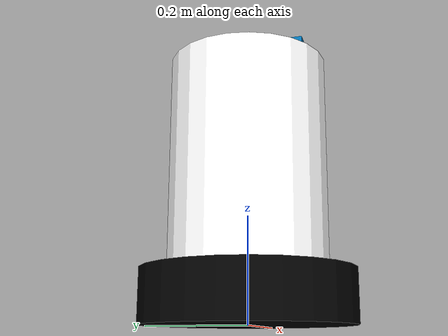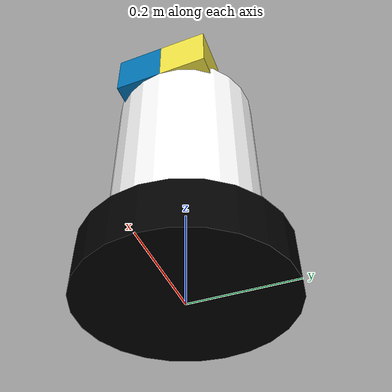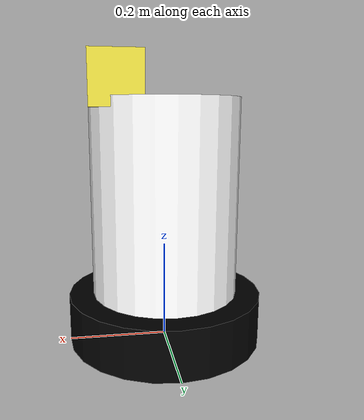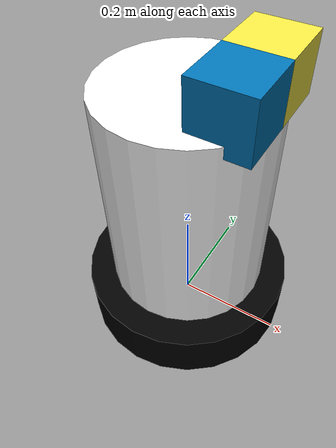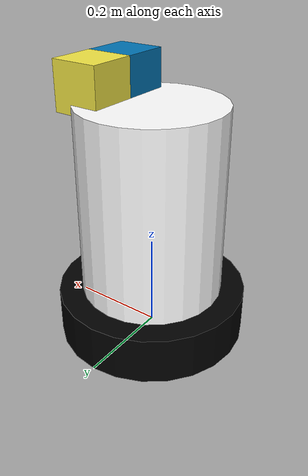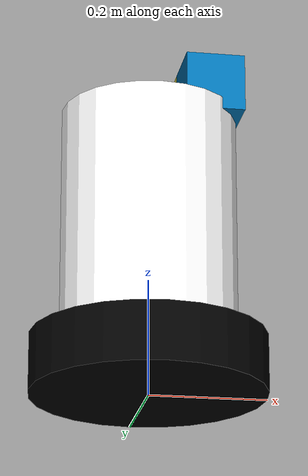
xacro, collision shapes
<?xml version="1.0"?>
<robot xmlns:xacro="http://www.ros.org/wiki/xacro" name="omni_base">

  <xacro:include filename="$(find omni_description)/xacro/main.plugin.xacro" />

  <link name="base_link"/>

  <link name="move_base">
    <inertial>
      <mass value="200"/>
      <inertia
	ixx="2.2"
	ixy="0"
	ixz="0"
	iyy="2.2"
	iyz="0"
	izz="4.0"
      />
    </inertial>
    <visual>
      <geometry>
	<cylinder length="0.1" radius="0.2"/>
      </geometry>
      <material name="black">
	<color rgba="0 0 0 1"/>
      </material>
    </visual>
    <collision name="base_link_collision">
      <geometry>
	<cylinder length="0.1" radius="0.2"/>
      </geometry>
    </collision>
  </link>

  <joint name="base_joint" type="fixed">
    <parent link="base_link" />
    <child link="move_base" />
    <origin xyz="0 0 0.05"/>
  </joint>

  <link name="body">
    <inertial>
      <mass value="10"/>
      <inertia
	ixx="0.19"
	ixy="0"
	ixz="0"
	iyy="0.19"
	iyz="0"
	izz="0.11"
      />
    </inertial>
    <visual>
      <geometry>
	<cylinder length="0.4" radius="0.15"/>
      </geometry>
      <material name="white">
	<color rgba="1 1 1 1"/>
      </material>
    </visual>
    <collision>
      <geometry>
	<cylinder length="0.4" radius="0.15"/>
      </geometry>
    </collision>
  </link>

  <joint name="body_joint" type="fixed">
    <parent link="move_base" />
    <child link="body" />
    <origin xyz="0 0 0.25"/>
  </joint>

  <link name="laser_1">
    <inertial>
      <mass value="1e-5" />
      <origin xyz="0 0 0" rpy="0 0 0" />
      <inertia ixx="1e-6" ixy="0" ixz="0" iyy="1e-6" iyz="0" izz="1e-6" />
    </inertial>

    <visual>
      <origin xyz="0 0 0" rpy="0 0 0" />
      <geometry>
	<mesh filename="package://omni_description/mesh/lms100.dae" />
      </geometry>
    </visual>

    <collision>
      <origin xyz="0 0 0" rpy="0 0 0" />
      <geometry>
	<box size="0.1 0.1 0.1" />
      </geometry>
    </collision>
  </link>

  <joint name="laser1_joint" type="fixed">
    <axis xyz="0 1 0" />
    <origin xyz="0.1 0.05 0.23" rpy="0 0 1.57079" />
    <parent link="body" />
    <child link="laser_1" />
  </joint>

  <link name="laser_2">
    <inertial>
      <mass value="1e-5" />
      <origin xyz="0 0 0" rpy="0 0 0" />
      <inertia ixx="1e-6" ixy="0" ixz="0" iyy="1e-6" iyz="0" izz="1e-6" />
    </inertial>

    <visual>
      <origin xyz="0 0 0" rpy="0 0 0" />
      <geometry>
	<mesh filename="package://omni_description/mesh/lms100.dae" />
      </geometry>
    </visual>

    <collision>
      <origin xyz="0 0 0" rpy="0 0 0" />
      <geometry>
	<box size="0.1 0.1 0.1" />
      </geometry>
    </collision>
  </link>

  <joint name="laser2_joint" type="fixed">
    <axis xyz="0 1 0" />
    <origin xyz="0.1 -0.05 0.23" rpy="0 0 -1.57079" />
    <parent link="body" />
    <child link="laser_2" />
  </joint>

  <gazebo reference="move_base">
    <material>Gazebo/Grey</material>
  </gazebo>

  <gazebo reference="body">
    <material>Gazebo/White</material>
  </gazebo>

</robot>
